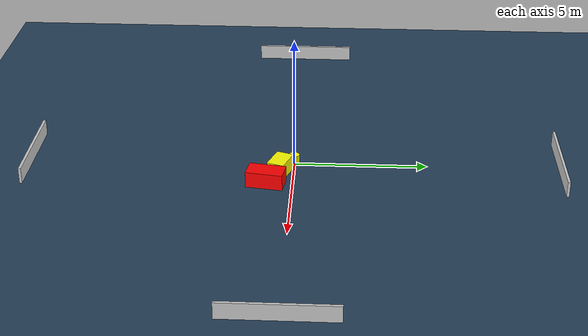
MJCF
<?xml version="1.0" ?>
<mujoco model="generated_environment">
  <option timestep="0.01" integrator="RK4" cone="elliptic"/>
  <default>
    <geom density="1"/>
  </default>
  <asset>
    <texture builtin="gradient" height="3072" name="skybox" rgb1="0.3 0.5 0.7" rgb2="0 0 0" type="skybox" width="512"/>
    <texture builtin="checker" height="300" name="groundplane" rgb1="0.2 0.3 0.4" rgb2="0.1 0.2 0.3" type="2d" width="300"/>
    <material name="groundplane" reflectance="0.2" texrepeat="5 5" texture="groundplane"/>
  </asset>
  <worldbody>
    <light dir="0 0 -1" directional="true" pos="0 0 1.5"/>
    <geom condim="3" friction="0.5 0.005 0.001" material="groundplane" name="floor" pos="0 0 0" size="0 0 0.05" type="plane"/>
    <body name="walls">
      <geom name="wall_1" condim="4" pos="-10.0 0.0 0.3" rgba="0.800000011920929 0.800000011920929 0.800000011920929 1.0" size="0.05 2.0 0.3" type="box"/>
      <geom name="wall_2" condim="4" pos="10.0 0.0 0.3" rgba="0.800000011920929 0.800000011920929 0.800000011920929 1.0" size="0.05 2.0 0.3" type="box"/>
      <geom name="wall_3" condim="4" pos="0.0 -10.0 0.3" rgba="0.800000011920929 0.800000011920929 0.800000011920929 1.0" size="2.0 0.05 0.3" type="box"/>
      <geom name="wall_4" condim="4" pos="0.0 10.0 0.3" rgba="0.800000011920929 0.800000011920929 0.800000011920929 1.0" size="2.0 0.05 0.3" type="box"/>
    </body>
    <body name="robot">
      <joint name="joint_x" type="slide" pos="0 0 0" axis="1 0 0"/>
      <joint name="joint_y" type="slide" pos="0 0 0" axis="0 1 0"/>
      <geom name="robot" type="cylinder" pos="0.0 0.0 0.2" size="0.2 0.2 0.0" mass="5.0" friction="1.0 0.005 0.0001" condim="4" rgba="1.0 1.0 0.0 1.0"/>
    </body>
    <body name="obstacle_1_movable">
      <geom name="obstacle_1_movable" condim="4" pos="0.7251194040840699 -0.4851681507270638 0.3" euler="0 0 70.1204085972941" friction="0.0 0.005 0.001" rgba="1.0 1.0 0.0 1.0" size="0.32664924414239427 0.4937576996449843 0.3" type="box" mass="0.1"/>
      <joint type="free"/>
    </body>
    <body name="obstacle_2_static">
      <geom name="obstacle_2_static" condim="4" pos="1.5914263684581387 -0.9678745171050335 0.3" euler="0 0 351.0878257398004" friction="0.0 0.005 0.001" rgba="1.0 0.0 0.0 1.0" size="0.3833833972543138 0.6903844409667643 0.3" type="box"/>
    </body>
  </worldbody>
  <actuator>
    <motor name="actuator_x" joint="joint_x" gear="1" ctrlrange="-1 1"/>
    <motor name="actuator_y" joint="joint_y" gear="1" ctrlrange="-1 1"/>
  </actuator>
</mujoco>
